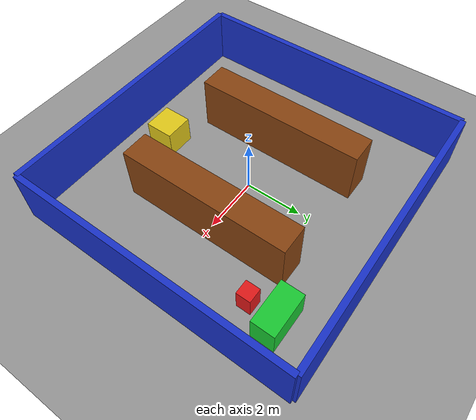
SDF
<?xml version="1.0" ?>
<sdf version="1.8">
  <world name="warehouse_world">

    <plugin filename="libignition-gazebo-physics-system.so" name="ignition::gazebo::systems::Physics"></plugin>
    <plugin filename="libignition-gazebo-user-commands-system.so" name="ignition::gazebo::systems::UserCommands"></plugin>
    <plugin filename="libignition-gazebo-scene-broadcaster-system.so" name="ignition::gazebo::systems::SceneBroadcaster"></plugin>
    <plugin filename="libignition-gazebo-sensors-system.so" name="ignition::gazebo::systems::Sensors">
      <render_engine>ogre2</render_engine>
    </plugin>
    <plugin filename="libignition-gazebo-imu-system.so" name="ignition::gazebo::systems::Imu"></plugin>

    <light type="directional" name="sun">
      <pose>0 0 10 0 0 0</pose>
      <cast_shadows>true</cast_shadows>
    </light>

    <model name="ground_plane">
      <static>true</static>
      <link name="link">
        <collision name="collision"><geometry><plane><normal>0 0 1</normal><size>20 20</size></plane></geometry></collision>
        <visual name="visual">
          <geometry><plane><normal>0 0 1</normal><size>20 20</size></plane></geometry>
          <material><ambient>0.6 0.6 0.6 1</ambient><diffuse>0.6 0.6 0.6 1</diffuse></material>
        </visual>
      </link>
    </model>

    <model name="north_wall">
      <pose>0 5 1 0 0 0</pose><static>true</static>
      <link name="link">
        <collision name="collision"><geometry><box><size>10 0.2 2</size></box></geometry></collision>
        <visual name="visual"><geometry><box><size>10 0.2 2</size></box></geometry><material><ambient>0.1 0.2 0.8 1</ambient><diffuse>0.1 0.2 0.8 1</diffuse></material></visual>
      </link>
    </model>
    <model name="south_wall">
      <pose>0 -5 1 0 0 0</pose><static>true</static>
      <link name="link">
        <collision name="collision"><geometry><box><size>10 0.2 2</size></box></geometry></collision>
        <visual name="visual"><geometry><box><size>10 0.2 2</size></box></geometry><material><ambient>0.1 0.2 0.8 1</ambient><diffuse>0.1 0.2 0.8 1</diffuse></material></visual>
      </link>
    </model>
    <model name="east_wall">
      <pose>5 0 1 0 0 0</pose><static>true</static>
      <link name="link">
        <collision name="collision"><geometry><box><size>0.2 10 2</size></box></geometry></collision>
        <visual name="visual"><geometry><box><size>0.2 10 2</size></box></geometry><material><ambient>0.1 0.2 0.8 1</ambient><diffuse>0.1 0.2 0.8 1</diffuse></material></visual>
      </link>
    </model>
    <model name="west_wall">
      <pose>-5 0 1 0 0 0</pose><static>true</static>
      <link name="link">
        <collision name="collision"><geometry><box><size>0.2 10 2</size></box></geometry></collision>
        <visual name="visual"><geometry><box><size>0.2 10 2</size></box></geometry><material><ambient>0.1 0.2 0.8 1</ambient><diffuse>0.1 0.2 0.8 1</diffuse></material></visual>
      </link>
    </model>

    <model name="rack_left">
      <pose>-2 0 1 0 0 0</pose><static>true</static>
      <link name="link">
        <collision name="collision"><geometry><box><size>1 6 2</size></box></geometry></collision>
        <visual name="visual"><geometry><box><size>1 6 2</size></box></geometry><material><ambient>0.54 0.27 0.07 1</ambient><diffuse>0.54 0.27 0.07 1</diffuse></material></visual>
      </link>
    </model>

    <model name="rack_right">
      <pose>2 0 1 0 0 0</pose><static>true</static>
      <link name="link">
        <collision name="collision"><geometry><box><size>1 6 2</size></box></geometry></collision>
        <visual name="visual"><geometry><box><size>1 6 2</size></box></geometry><material><ambient>0.54 0.27 0.07 1</ambient><diffuse>0.54 0.27 0.07 1</diffuse></material></visual>
      </link>
    </model>

    <model name="pallet_obstacle">
      <pose>0 -3.5 0.5 0 0 0</pose><static>true</static>
      <link name="link">
        <collision name="collision"><geometry><box><size>1 1 1</size></box></geometry></collision>
        <visual name="visual"><geometry><box><size>1 1 1</size></box></geometry><material><ambient>0.9 0.8 0.1 1</ambient><diffuse>0.9 0.8 0.1 1</diffuse></material></visual> </link>
    </model>

    <model name="desk_block">
      <pose>3.5 3.5 0.5 0 0 0</pose><static>true</static>
      <link name="link">
        <collision name="collision"><geometry><box><size>1.5 0.8 1</size></box></geometry></collision>
        <visual name="visual"><geometry><box><size>1.5 0.8 1</size></box></geometry><material><ambient>0.1 0.8 0.2 1</ambient><diffuse>0.1 0.8 0.2 1</diffuse></material></visual> </link>
    </model>

    <model name="chair_block">
      <pose>3.5 2.5 0.4 0 0 0</pose><static>true</static>
      <link name="link">
        <collision name="collision"><geometry><box><size>0.5 0.5 0.8</size></box></geometry></collision>
        <visual name="visual"><geometry><box><size>0.5 0.5 0.8</size></box></geometry><material><ambient>0.9 0.1 0.1 1</ambient><diffuse>0.9 0.1 0.1 1</diffuse></material></visual> </link>
    </model>

  </world>
</sdf>
